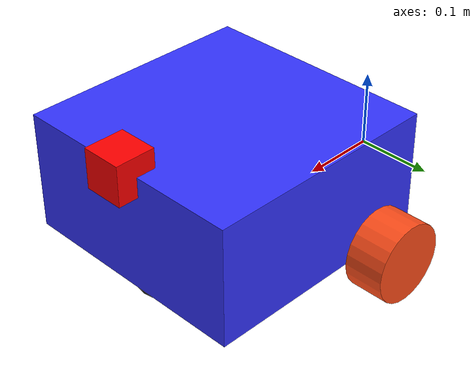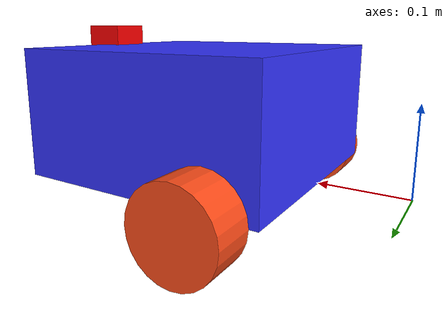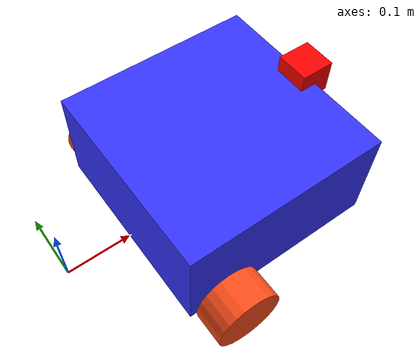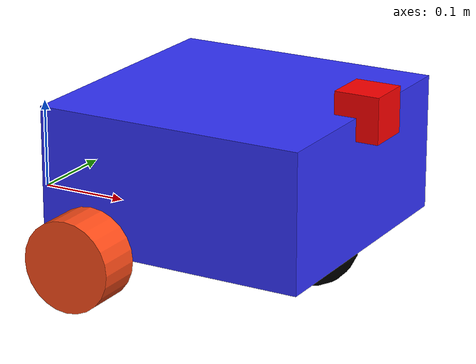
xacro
<?xml version="1.0"?>

<robot xmlns:xacro="http://www.ros.org/wiki/xacro" name="diffdrive">

    <xacro:include filename="gazebo.xacro" />
    <xacro:include filename="camera.xacro" />

    <material name="white">
        <color rgba="1 1 1 1" />
    </material>

    <material name="orange">
        <color rgba="1 0.3 0.1 1"/>
    </material>

    <material name="blue">
        <color rgba="0.2 0.2 1 1"/>
    </material>

    <material name="black">
        <color rgba="0 0 0 1"/>
    </material>
    <link name="base_link">

    </link>
    <joint name="chasis_joint" type="fixed">
        <parent link="base_link"/>
        <child link="chassis"/>
        <origin xyz="0.1 0 0"/>
    </joint>

    <link name="chassis">
        <inertial>
            <origin xyz="0.15 0 0.075" rpy="0.0 0.0 0.0"/>
            <mass value="0.5"/>
            <inertia ixx="0.00469" ixy="0.0" ixz="0.0"
                    iyy="0.00469" iyz="0.0"
                    izz="0.0075" />
        <origin xyz="0.15 0 0.075" rpy="0 0 0"/>
        </inertial>
        <visual name="">
            <origin xyz="0.15 0 0.075" rpy="0.0 0.0 0.0"/>
            <geometry>
                <box size="0.3 0.3 0.15"/>
            </geometry>
            <material name="blue">
            </material>
        </visual>
        <collision>
            <origin xyz="0.15 0 0.075" rpy="0.0 0.0 0.0"/>
            <geometry>
                <box size="0.3 0.3 0.15"/>
            </geometry>
            <material name="blue">
            </material>
        </collision>
    </link>

    <xacro:macro name="wheel_direction" params="name xyz">
    <joint name="joint_${name}" type="continuous">
        <origin rpy="0 1.57075 1.57075 " xyz="${xyz}"/>
        <parent link="chassis"/>
        <child link="joint_link_${name}"/>
        <axis xyz="0.0 0.0 1.0"/>
    </joint>

    <link name="joint_link_${name}">
        <inertial>
            <origin xyz="0.0 0.0 0.0" rpy="0.0 0.0 0.0"/>
            <mass value="0.1"/>
            <inertia ixx="8.334e-05" ixy="0.0" ixz="0.0" iyy="8.334e-05" iyz="0.0" izz="0.000125" />
        </inertial>
        <visual name="">
            <origin xyz="0.0 0.0 0.0" rpy="0.0 0.0 0.0"/>
            <geometry>
                <cylinder length="0.05" radius="0.05"/>
            </geometry>
            <material name="orange"/>
        </visual>
        <collision>
            <origin xyz="0.0 0.0 0.0" rpy="0.0 0.0 0.0"/>
            <geometry>
                <cylinder length="0.05" radius="0.05"/>
            </geometry>
        </collision>
    </link>
    </xacro:macro>

    <xacro:wheel_direction name="right" xyz = "0.06 0.175 0" />
    <xacro:wheel_direction name="left" xyz = "0.06 -0.175 0" />

    <joint name="joint_chaster" type="fixed">
        <origin xyz="0.24 0.0 0.0" rpy="0.0 0.0 0.0"/>
        <parent link="chassis"/>
        <child link="caster_wheel"/>
    </joint>

    <link name="caster_wheel">
        <inertial>
            <origin xyz="0.0 0.0 0.0" rpy="0.0 0.0 0.0"/>
            <mass value="0.010"/>
            <inertia ixx="0.00010" ixy="0.0" ixz="0.0" iyy="0.00010" iyz="0.0" izz="0.00010" />
        </inertial>
        <visual name="">
            <origin xyz="0.0 0.0 0.0" rpy="0.0 0.0 0.0"/>
            <geometry>
                <sphere radius="0.05" />
            </geometry>
            <material name="black"/>

        </visual>
        <collision>
            <origin xyz="0.0 0.0 0.0" rpy="0.0 0.0 0.0"/>
            <geometry>
                <sphere radius="0.05" />
            </geometry>
            <material name="black"/>
        </collision>
    </link>

    <joint name="joint_cam" type="fixed">
        <origin xyz="0.3 0.0 0.15" rpy="0.0 0.0 0.0"/>
        <parent link="chassis"/>
        <child link="camera_link"/>
        <axis xyz="0.0 0.0 0.0"/>
    </joint>

    <link name="camera_link">
        <inertial>
            <origin xyz="0.0 0.0 0.0" rpy="0.0 0.0 0.0"/>
            <mass value="0.0"/>
            <inertia ixx="0.0" ixy="0.0" ixz="0.0" iyy="0.0" iyz="0.0" izz="0.0"/>
        </inertial>
        <visual name="">
            <origin xyz="0.0 0.0 0.0" rpy="0.0 0.0 0.0"/>
            <geometry>
                <box size="0.05 0.05 0.05"/>
            </geometry>
            <material name="">
                <color rgba="1.0 0.0 0.0 1.0"/>
                <texture filename=""/>
            </material>
        </visual>
        <collision>
            <origin xyz="0.0 0.0 0.0" rpy="0.0 0.0 0.0"/>
            <geometry>
                <box size="0.05 0.05 0.05"/>
            </geometry>
        </collision>
    </link>

</robot>

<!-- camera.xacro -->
<robot xmlns:xacro="http://www.ros.org/wiki/xacro">

<joint name="camera_optical_joint" type="fixed">
    <origin xyz="0 0 0" rpy="-1.571 0 -1.571" />
    <parent link="camera_link" />
    <child link="camera_link_optical" />
</joint>

<link name="camera_link_optical"></link>

<!-- Add a gazebo tag for the ORIGINAL camera_link (but in the plugin we reference the optical frame so that ROS can orient things correctly) -->
<!-- Note that although visualise is set to true, it won't actually visualise the depth camera in gazebo. To see the preview,
    try swapping "depth" to "camera"-->

<gazebo reference="camera_link">
    <sensor type="depth" name="my_camera">
        <update_rate>20</update_rate>
        <visualize>true</visualize>
        <camera name="cam">
            <horizontal_fov>1.3962634</horizontal_fov>
            <image>
                <width>640</width>
                <height>480</height>
                <format>R8B8G8</format>
            </image>
            <clip>
                <near>0.02</near>
                <far>300</far>
            </clip>
            <noise>
                <type>gaussian</type>
                <mean>0.0</mean>
                <stddev>0.007</stddev>
            </noise>
        </camera>
        <plugin name="camera_controller" filename="libgazebo_ros_camera.so">
            <frame_name>camera_link_optical</frame_name>
            <min_depth>0.1</min_depth>
            <max_depth>500</max_depth>
        </plugin>
    </sensor>
</gazebo>
</robot>
